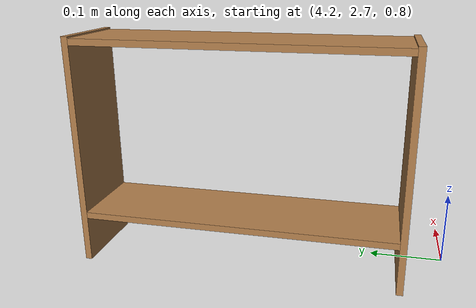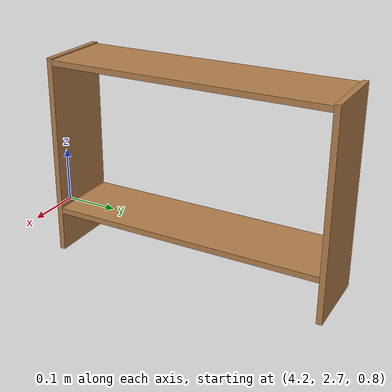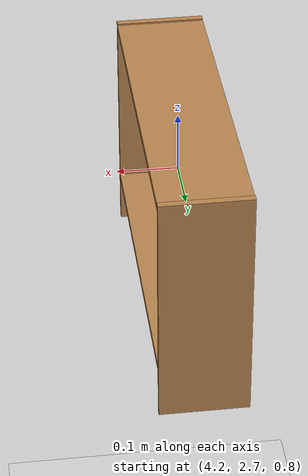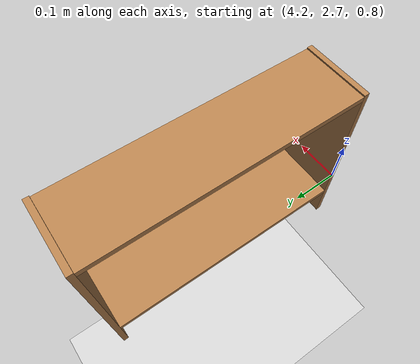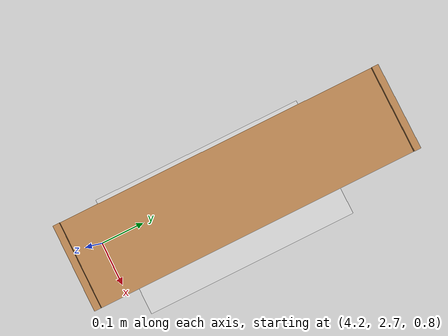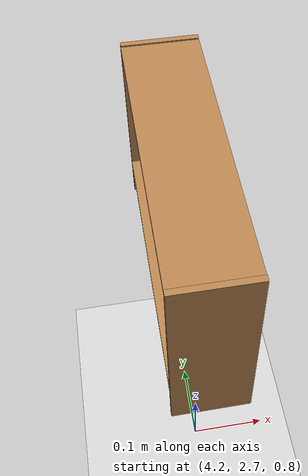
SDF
<sdf version="1.4">
 <world name="default">
  <include><uri>model://ground_plane</uri></include>
  <include><uri>model://sun</uri></include>
  <include><uri>model://shelf</uri><name>shelf1</name><pose>4.3 3 0.83 0 0 -1.57</pose></include>
 </world>
</sdf>

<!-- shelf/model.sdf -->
<sdf version="1.4">
  <model name="shelf">
    <static>true</static>
    <link name="link">
      <inertial>
        <mass>1.0</mass>
      </inertial>

      <collision name="left_side">
        <pose>0.245 -0.065 0.1 0 0 0</pose>
        <geometry>
          <box>
            <size>0.01 0.13 0.355</size>
          </box>
        </geometry>
      </collision>
      <visual name="visual2">
        <pose>0.245 -0.065 0.1 0 0 0</pose>
        <geometry>
          <box>
            <size>0.01 0.13 0.355</size>
          </box>
        </geometry>
        <material>
          <script>
            <uri>file://media/materials/scripts/gazebo.material</uri>
            <name>Gazebo/Wood</name>
          </script>
        </material>
      </visual>

      <collision name="right_side">
        <pose>-0.245 -0.065 0.1 0 0 0</pose>
        <geometry>
          <box>
            <size>0.01 0.13 0.355</size>
          </box>
        </geometry>
      </collision>
      <visual name="visual3">
        <pose>-0.245 -0.065 0.1 0 0 0</pose>
        <geometry>
          <box>
            <size>0.01 0.13 0.355</size>
          </box>
        </geometry>
        <material>
          <script>
            <uri>file://media/materials/scripts/gazebo.material</uri>
            <name>Gazebo/Wood</name>
          </script>
        </material>
      </visual>

      <collision name="bottom">
        <pose>0 -0.065 0 0 0 0</pose>
        <geometry>
          <box>
            <size>0.48 0.13 0.01</size>
          </box>
        </geometry>
      </collision>
      <visual name="visual4">
        <pose>0 -0.065 0 0 0 0</pose>
        <geometry>
          <box>
            <size>0.48 0.13 0.01</size>
          </box>
        </geometry>
        <material>
          <script>
            <uri>file://media/materials/scripts/gazebo.material</uri>
            <name>Gazebo/Wood</name>
          </script>
        </material>
      </visual>

      <collision name="top">
        <pose>0 -0.065 0.27 0 0 0</pose>
        <geometry>
          <box>
            <size>0.48 0.13 0.01</size>
          </box>
        </geometry>
      </collision>
      <visual name="visual5">
        <pose>0 -0.065 0.27 0 0 0</pose>
        <geometry>
          <box>
            <size>0.48 0.13 0.01</size>
          </box>
        </geometry>
        <material>
          <script>
            <uri>file://media/materials/scripts/gazebo.material</uri>
            <name>Gazebo/Wood</name>
          </script>
        </material>
      </visual>
    </link>
  </model>
</sdf>
